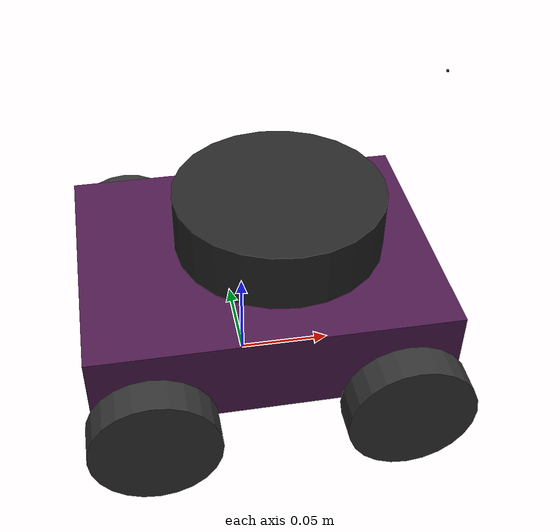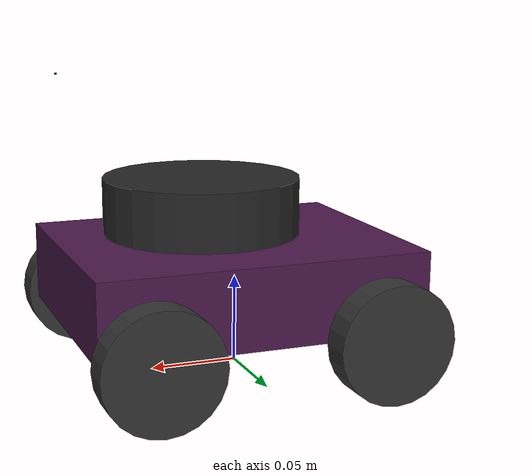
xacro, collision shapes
<?xml version="1.0" ?>
<robot name="turtlebot3_mecanum" xmlns:xacro="http://ros.org/wiki/xacro">
  <xacro:arg name="enable_planar_drive" default="true"/>
  <xacro:arg name="enable_lidar" default="true"/>
  <xacro:arg name="enable_camera" default="true"/>
  <xacro:arg name="enable_imu" default="true"/>
  <xacro:include filename="$(find myrobot_description)/urdf/common_properties.xacro"/>
  <xacro:include filename="$(find myrobot_description)/urdf/camera.xacro"/>

  <link name="base_footprint"/>

	<joint name="base_joint" type="fixed">
		<parent link="base_footprint"/>
		<child link="base_link"/>
		<origin xyz="0.0 0.0 0.053136" rpy="0 0 0"/>
	</joint>

	<link name="base_link">
   		<visual>
			<origin xyz="0.0355 0 0" rpy="0 0 0" />
			<geometry>
				<mesh filename="package://myrobot_description/meshes/bases/base_link.STL" />
			</geometry>
			<material name="light_black">
				<color rgba="0.3 0.1 0.3 1" />
			</material>
   		</visual>

		<collision>
			<!-- Use a convex chassis collision body for stable Gazebo contact. -->
			<origin xyz="0.007 0 -0.002" rpy="0 0 0" />
			<geometry>
				<box size="0.185 0.145 0.045" />
			</geometry>
		</collision>

		<inertial>
			<!-- Keep the center of mass centered and below the wheel axles. -->
			<origin xyz="0.007 0 -0.018" rpy="0 0 0" />
			<mass value="2.20"/>
	 		<inertia
				ixx="0.0042" ixy="0" ixz="0"
				iyy="0.0067" iyz="0"
				izz="0.0100" />
		</inertial>
	</link>

<joint name="wheel_right_rear_joint" type="continuous">
		<parent link="base_link"/>
		<child link="wheel_right_rear"/>
		<origin xyz="-0.05647 -0.085 -0.02325" rpy="-1.57 0 0"/>
		<axis xyz="0 0 1"/>
	</joint>

 	<link name="wheel_right_rear">
   		<visual>
			<origin xyz="0 0 -0.009" rpy="0 1.57 0"/>
   			<geometry>
				<mesh filename="package://myrobot_description/meshes/wheels/wheel_right_rear.STL" />
			</geometry>
   			<material name="dark">
				<color rgba="0.2 0.2 0.2 1"/>
			</material>
		</visual>
		<collision>
			<origin xyz="0 0 0" rpy="0 0 0" />
			<geometry>
				<cylinder radius="0.033" length="0.018" />
			</geometry>
		</collision>
		<inertial>
			<origin xyz="0 0 0" rpy="0 0 0" />
			<mass value="0.08"/>
	 		<inertia
				ixx="0.000022" ixy="0" ixz="0"
				iyy="0.000022" iyz="0"
				izz="0.000044" />
		</inertial>
 	</link>

<joint name="wheel_left_rear_joint" type="continuous">
		<parent link="base_link"/>
		<child link="wheel_left_rear"/>
		<origin xyz="-0.05647 0.085 -0.02325" rpy="-1.57 0 0"/>
		<axis xyz="0 0 1"/>
	</joint>

 	<link name="wheel_left_rear">
   		<visual>
			<origin xyz="0 0 0.009" rpy="0 1.57 0 "/>
   			<geometry>
				<mesh filename="package://myrobot_description/meshes/wheels/wheel_left_rear.STL" />
			</geometry>
   			<material name="Rubber">
				<color rgba="0.2 0.2 0.2 1"/>
			</material>
		</visual>
		<collision>
			<origin xyz="0 0 0" rpy="0 0 0" />
			<geometry>
				<cylinder radius="0.033" length="0.018" />
			</geometry>
		</collision>
		<inertial>
			<origin xyz="0 0 0" rpy="0 0 0" />
			<mass value="0.08"/>
	 		<inertia
				ixx="0.000022" ixy="0" ixz="0"
				iyy="0.000022" iyz="0"
				izz="0.000044" />
		</inertial>
 	</link>

<joint name="wheel_right_front_joint" type="continuous">
		<parent link="base_link"/>
		<child link="wheel_right_front"/>
		<origin xyz="0.071132 -0.085 -0.02325" rpy="-1.57 0 0"/>
		<axis xyz="0 0 1"/>
	</joint>

	<link name="wheel_right_front">
   		<visual>
			<origin xyz="0 0 -0.009" rpy="0 1.57 0"/>
   			<geometry>
				<mesh filename="package://myrobot_description/meshes/wheels/wheel_right_front.STL" />
			</geometry>
   			<material name="Rubber">
				<color rgba="0.2 0.2 0.2 1"/>
			</material>
		</visual>
		<collision>
			<origin xyz="0 0 0" rpy="0 0 0" />
			<geometry>
				<cylinder radius="0.033" length="0.018" />
			</geometry>
		</collision>
		<inertial>
			<origin xyz="0 0 0" rpy="0 0 0" />
			<mass value="0.08"/>
	 		<inertia
				ixx="0.000022" ixy="0" ixz="0"
				iyy="0.000022" iyz="0"
				izz="0.000044" />
		</inertial>
 	</link>

<joint name="wheel_left_front_joint" type="continuous">
		<parent link="base_link"/>
		<child link="wheel_left_front"/>
		<origin xyz="0.071132 0.085 -0.02325" rpy="-1.57 0 0"/>
		<axis xyz="0 0 1"/>
	</joint>

	<link name="wheel_left_front">
   		<visual>
			<origin xyz="0 0 0.009" rpy="0 1.57 0"/>
   			<geometry>
				<mesh filename="package://myrobot_description/meshes/wheels/wheel_left_front.STL" />
			</geometry>
   			<material name="Rubber">
				<color rgba="0.2 0.2 0.2 1"/>
			</material>
		</visual>
		<collision>
			<origin xyz="0 0 0" rpy="0 0 0" />
			<geometry>
				<cylinder radius="0.033" length="0.018" />
			</geometry>
		</collision>
		<inertial>
			<origin xyz="0 0 0" rpy="0 0 0" />
			<mass value="0.08"/>
	 		<inertia
				ixx="0.000022" ixy="0" ixz="0"
				iyy="0.000022" iyz="0"
				izz="0.000044" />
		</inertial>
 	</link>

<joint name="imu_joint" type="fixed">
    <parent link="base_link"/>
    <child link="imu_link"/>
    <origin xyz="0.0 0 0.0" rpy="0 0 0"/>
  </joint>

  <link name="imu_link"/>

<joint name="scan_joint" type="fixed">
    <parent link="base_link"/>
    <child link="base_scan"/>
    <origin xyz="0.005 0 0.047" rpy="0 0 0"/>
  </joint>

  <link name="base_scan">
    <visual>
      <origin xyz="0 0 0.03" rpy="0 0 0"/>
      <geometry>
        <mesh filename="package://myrobot_description/meshes/bases/lds.STL" scale="0.001 0.001 0.001"/>
      </geometry>
      <material name="dark">
        <color rgba="0.15 0.15 0.15 1"/>
      </material>
    </visual>

    <collision>
      <origin xyz="0.015 0 -0.0065" rpy="0 0 0"/>
      <geometry>
        <cylinder length="0.0315" radius="0.055"/>
      </geometry>
    </collision>

    <inertial>
      <mass value="0.114" />
      <origin xyz="0 0 0" />
      <inertia ixx="0.001" ixy="0.0" ixz="0.0"
               iyy="0.001" iyz="0.0"
               izz="0.001" />
    </inertial>
  </link>
  <!-- Gazebo visual/material/contact tuning. -->
  <gazebo reference="base_link">
    <material>Gazebo/Black</material>
    <mu1>0.8</mu1>
    <mu2>0.8</mu2>
  </gazebo>

  <gazebo reference="wheel_right_rear">
    <material>Gazebo/Black</material>
    <mu1>0.55</mu1>
    <mu2>0.55</mu2>
    <kp>100000.0</kp>
    <kd>1.0</kd>
  </gazebo>

  <gazebo reference="wheel_left_rear">
    <material>Gazebo/Black</material>
    <mu1>0.55</mu1>
    <mu2>0.55</mu2>
    <kp>100000.0</kp>
    <kd>1.0</kd>
  </gazebo>

  <gazebo reference="wheel_right_front">
    <material>Gazebo/Blue</material>
    <mu1>0.55</mu1>
    <mu2>0.55</mu2>
    <kp>100000.0</kp>
    <kd>1.0</kd>
  </gazebo>

  <gazebo reference="wheel_left_front">
    <material>Gazebo/Blue</material>
    <mu1>0.55</mu1>
    <mu2>0.55</mu2>
    <kp>100000.0</kp>
    <kd>1.0</kd>
  </gazebo>

  <xacro:if value="$(arg enable_lidar)">
  <gazebo reference="base_scan">
    <material>Gazebo/Black</material>
    <sensor name="base_scan_sensor" type="ray">
      <always_on>true</always_on>
      <visualize>true</visualize>
      <update_rate>10</update_rate>
      <pose>0 0 0 0 0 0</pose>
      <ray>
        <scan>
          <horizontal>
            <samples>720</samples>
            <resolution>1</resolution>
            <min_angle>-3.1415926</min_angle>
            <max_angle>3.1415926</max_angle>
          </horizontal>
        </scan>
        <range>
          <min>0.12</min>
          <max>12.0</max>
          <resolution>0.01</resolution>
        </range>
        <noise>
          <type>gaussian</type>
          <mean>0.0</mean>
          <stddev>0.01</stddev>
        </noise>
      </ray>
      <plugin name="gazebo_ros_laser_controller" filename="libgazebo_ros_laser.so">
        <topicName>/scan</topicName>
        <frameName>base_scan</frameName>
      </plugin>
    </sensor>
  </gazebo>
  </xacro:if>

  <xacro:if value="$(arg enable_imu)">
  <gazebo reference="imu_link">
    <gravity>true</gravity>
    <sensor name="imu_sensor" type="imu">
      <always_on>true</always_on>
      <visualize>false</visualize>
      <update_rate>100</update_rate>
      <plugin name="imu_controller" filename="libgazebo_ros_imu_sensor.so">
        <topicName>/imu/data</topicName>
        <frameName>imu_link</frameName>
        <updateRateHZ>100.0</updateRateHZ>
        <gaussianNoise>0.0002</gaussianNoise>
        <xyzOffset>0 0 0</xyzOffset>
        <rpyOffset>0 0 0</rpyOffset>
      </plugin>
    </sensor>
  </gazebo>
  </xacro:if>

  <xacro:if value="$(arg enable_planar_drive)">
  <!--
    Gazebo holonomic/mecanum base drive.
    It subscribes to /cmd_vel and publishes /odom plus odom -> base_footprint TF.
    Wheel joint rotation is published by scripts/mecanum_sim_driver.py.
  -->
  <gazebo>
    <plugin name="mecanum_planar_drive" filename="libgazebo_ros_planar_move.so">
      <robotNamespace>/</robotNamespace>
      <bodyName>base_link</bodyName>
      <commandTopic>cmd_vel</commandTopic>
      <cmdTimeout>0.5</cmdTimeout>
      <odometryTopic>odom</odometryTopic>
      <odometryFrame>odom</odometryFrame>
      <robotBaseFrame>base_footprint</robotBaseFrame>
      <odometryRate>30.0</odometryRate>
      <publishOdometryTf>true</publishOdometryTf>
    </plugin>
  </gazebo>
  </xacro:if>

</robot>

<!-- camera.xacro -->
<robot name="camera_description" xmlns:xacro="http://ros.org/wiki/xacro">
    <!-- Camera geometry and pose relative to base_link. -->
    <xacro:property name="camera_length" value="0.010" />
    <xacro:property name="camera_width"  value="0.025" />
    <xacro:property name="camera_height" value="0.025" />
    <xacro:property name="camera_x" value="0.100" />
    <xacro:property name="camera_y" value="0.000" />
    <xacro:property name="camera_z" value="0.115" />

    <joint name="camera_joint" type="fixed">
        <parent link="base_link" />
        <child link="camera_link" />
        <origin xyz="${camera_x} ${camera_y} ${camera_z}" rpy="0 0 0" />
    </joint>

    <link name="camera_link">
        <visual>
            <origin xyz="0 0 0" rpy="0 0 0" />
            <geometry>
                <box size="${camera_length} ${camera_width} ${camera_height}" />
            </geometry>
            <material name="camera_black">
                <color rgba="0.02 0.02 0.02 1" />
            </material>
        </visual>
        <collision>
            <origin xyz="0 0 0" rpy="0 0 0" />
            <geometry>
                <box size="0.001 0.001 0.001" />
            </geometry>
        </collision>
        <inertial>
            <origin xyz="0 0 0" rpy="0 0 0" />
            <mass value="0.05" />
            <inertia ixx="0.00001" ixy="0" ixz="0"
                     iyy="0.00001" iyz="0"
                     izz="0.00001" />
        </inertial>
    </link>

    <!-- ROS optical frame: z forward, x right, y down. -->
    <joint name="camera_optical_joint" type="fixed">
        <parent link="camera_link" />
        <child link="camera_optical_frame" />
        <origin xyz="0 0 0" rpy="-1.57079632679 0 -1.57079632679" />
    </joint>

    <link name="camera_optical_frame" />

    <xacro:if value="$(arg enable_camera)">
    <gazebo reference="camera_link">
        <material>Gazebo/Black</material>
        <sensor name="camera_sensor" type="camera">
            <always_on>true</always_on>
            <update_rate>30.0</update_rate>
            <visualize>true</visualize>
            <camera>
                <horizontal_fov>1.047</horizontal_fov>
                <image>
                    <width>640</width>
                    <height>480</height>
                    <format>R8G8B8</format>
                </image>
                <clip>
                    <near>0.05</near>
                    <far>50.0</far>
                </clip>
                <distortion>
                    <k1>0.0</k1>
                    <k2>0.0</k2>
                    <k3>0.0</k3>
                    <p1>0.0</p1>
                    <p2>0.0</p2>
                    <center>0.5 0.5</center>
                </distortion>
            </camera>
            <plugin name="camera_controller" filename="libgazebo_ros_camera.so">
                <alwaysOn>true</alwaysOn>
                <updateRate>30.0</updateRate>
                <cameraName>camera</cameraName>
                <imageTopicName>image_raw</imageTopicName>
                <cameraInfoTopicName>camera_info</cameraInfoTopicName>
                <frameName>camera_optical_frame</frameName>
                <hackBaseline>0.0</hackBaseline>
                <distortionK1>0.0</distortionK1>
                <distortionK2>0.0</distortionK2>
                <distortionK3>0.0</distortionK3>
                <distortionT1>0.0</distortionT1>
                <distortionT2>0.0</distortionT2>
            </plugin>
        </sensor>
    </gazebo>
    </xacro:if>
</robot>
